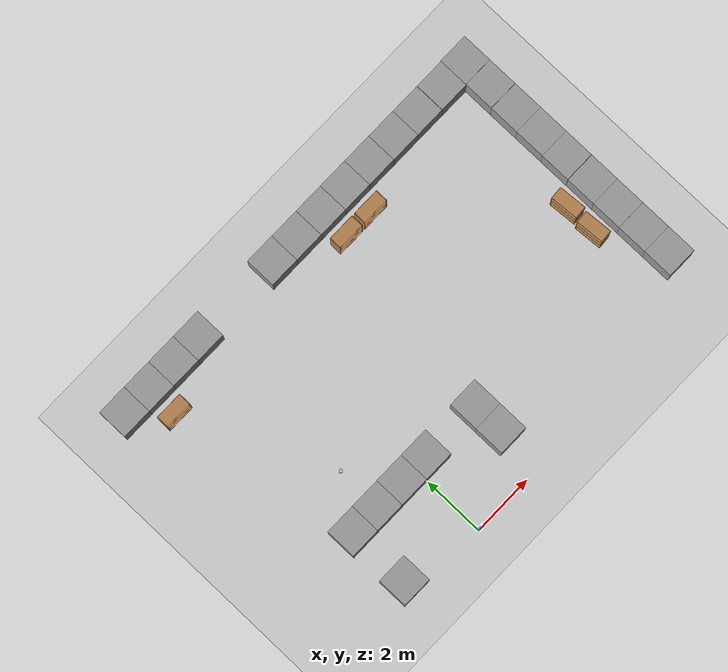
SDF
<sdf version="1.6">
 <world name="default">
  <model name="ground_plane">
   <static>1</static>
   <link name="link">
    <collision name="collision">
     <geometry><plane><normal>0 0 1</normal><size>100 100</size></plane></geometry>
     <surface><friction><ode><mu>100</mu><mu2>50</mu2></ode></friction></surface>
    </collision>
    <visual name="visual">
     <cast_shadows>0</cast_shadows>
     <geometry><plane><normal>0 0 1</normal><size>100 100</size></plane></geometry>
     <material>
      <script><uri>file://media/materials/scripts/gazebo.material</uri><name>Gazebo/Grey</name></script>
     </material>
    </visual>
   </link>
  </model>
  <model name="unit_box_1">
   <pose>9.47002 9.54111 0.499798 -0.000404 1e-06 -1.3e-05</pose>
   <link name="link">
    <inertial>
     <mass>1</mass>
     <inertia>
      <ixx>0.166667</ixx>
      <ixy>0</ixy>
      <ixz>0</ixz>
      <iyy>0.166667</iyy>
      <iyz>0</iyz>
      <izz>0.166667</izz>
     </inertia>
    </inertial>
    <collision name="collision"><geometry><box><size>1 1 1</size></box></geometry></collision>
    <visual name="visual">
     <geometry><box><size>1 1 1</size></box></geometry>
     <material>
      <script><name>Gazebo/Grey</name><uri>file://media/materials/scripts/gazebo.material</uri></script>
     </material>
    </visual>
   </link>
  </model>
  <model name="unit_box_12">
   <pose>9.46932 8.53619 0.499798 -0.000404 -0 -0.000725</pose>
   <link name="link">
    <inertial>
     <mass>1</mass>
     <inertia>
      <ixx>0.166667</ixx>
      <ixy>0</ixy>
      <ixz>0</ixz>
      <iyy>0.166667</iyy>
      <iyz>0</iyz>
      <izz>0.166667</izz>
     </inertia>
    </inertial>
    <collision name="collision"><geometry><box><size>1 1 1</size></box></geometry></collision>
    <visual name="visual">
     <geometry><box><size>1 1 1</size></box></geometry>
     <material>
      <script><name>Gazebo/Grey</name><uri>file://media/materials/scripts/gazebo.material</uri></script>
     </material>
    </visual>
   </link>
  </model>
  <model name="unit_box_13">
   <pose>9.46833 7.53135 0.499798 0.000404 -1e-06 0.0004</pose>
   <link name="link">
    <inertial>
     <mass>1</mass>
     <inertia>
      <ixx>0.166667</ixx>
      <ixy>0</ixy>
      <ixz>0</ixz>
      <iyy>0.166667</iyy>
      <iyz>0</iyz>
      <izz>0.166667</izz>
     </inertia>
    </inertial>
    <collision name="collision"><geometry><box><size>1 1 1</size></box></geometry></collision>
    <visual name="visual">
     <geometry><box><size>1 1 1</size></box></geometry>
     <material>
      <script><name>Gazebo/Grey</name><uri>file://media/materials/scripts/gazebo.material</uri></script>
     </material>
    </visual>
   </link>
  </model>
  <model name="unit_box_14">
   <pose>9.46847 6.53108 0.5 0 -0 0.000157</pose>
   <link name="link">
    <inertial>
     <mass>1</mass>
     <inertia>
      <ixx>0.166667</ixx>
      <ixy>0</ixy>
      <ixz>0</ixz>
      <iyy>0.166667</iyy>
      <iyz>0</iyz>
      <izz>0.166667</izz>
     </inertia>
    </inertial>
    <collision name="collision"><geometry><box><size>1 1 1</size></box></geometry></collision>
    <visual name="visual">
     <geometry><box><size>1 1 1</size></box></geometry>
     <material>
      <script><name>Gazebo/Grey</name><uri>file://media/materials/scripts/gazebo.material</uri></script>
     </material>
    </visual>
   </link>
  </model>
  <model name="unit_box_15">
   <pose>9.46869 5.53105 0.49907 0 0.0001 0.000155</pose>
   <link name="link">
    <inertial>
     <mass>1</mass>
     <inertia>
      <ixx>0.166667</ixx>
      <ixy>0</ixy>
      <ixz>0</ixz>
      <iyy>0.166667</iyy>
      <iyz>0</iyz>
      <izz>0.166667</izz>
     </inertia>
    </inertial>
    <collision name="collision"><geometry><box><size>1 1 1</size></box></geometry></collision>
    <visual name="visual">
     <geometry><box><size>1 1 1</size></box></geometry>
     <material>
      <script><name>Gazebo/Grey</name><uri>file://media/materials/scripts/gazebo.material</uri></script>
     </material>
    </visual>
   </link>
  </model>
  <model name="unit_box_16">
   <pose>9.46813 4.51848 0.499798 -0.000404 -1e-06 -9.1e-05</pose>
   <link name="link">
    <inertial>
     <mass>1</mass>
     <inertia>
      <ixx>0.166667</ixx>
      <ixy>0</ixy>
      <ixz>0</ixz>
      <iyy>0.166667</iyy>
      <iyz>0</iyz>
      <izz>0.166667</izz>
     </inertia>
    </inertial>
    <collision name="collision"><geometry><box><size>1 1 1</size></box></geometry></collision>
    <visual name="visual">
     <geometry><box><size>1 1 1</size></box></geometry>
     <material>
      <script><name>Gazebo/Grey</name><uri>file://media/materials/scripts/gazebo.material</uri></script>
     </material>
    </visual>
   </link>
  </model>
  <model name="unit_box_17">
   <pose>9.46838 3.51846 0.499798 -0.000404 -0 -9.3e-05</pose>
   <link name="link">
    <inertial>
     <mass>1</mass>
     <inertia>
      <ixx>0.166667</ixx>
      <ixy>0</ixy>
      <ixz>0</ixz>
      <iyy>0.166667</iyy>
      <iyz>0</iyz>
      <izz>0.166667</izz>
     </inertia>
    </inertial>
    <collision name="collision"><geometry><box><size>1 1 1</size></box></geometry></collision>
    <visual name="visual">
     <geometry><box><size>1 1 1</size></box></geometry>
     <material>
      <script><name>Gazebo/Grey</name><uri>file://media/materials/scripts/gazebo.material</uri></script>
     </material>
    </visual>
   </link>
  </model>
  <model name="unit_box_18">
   <pose>9.46805 2.51745 0.499798 -0.000404 -0 0.000151</pose>
   <link name="link">
    <inertial>
     <mass>1</mass>
     <inertia>
      <ixx>0.166667</ixx>
      <ixy>0</ixy>
      <ixz>0</ixz>
      <iyy>0.166667</iyy>
      <iyz>0</iyz>
      <izz>0.166667</izz>
     </inertia>
    </inertial>
    <collision name="collision"><geometry><box><size>1 1 1</size></box></geometry></collision>
    <visual name="visual">
     <geometry><box><size>1 1 1</size></box></geometry>
     <material>
      <script><name>Gazebo/Grey</name><uri>file://media/materials/scripts/gazebo.material</uri></script>
     </material>
    </visual>
   </link>
  </model>
  <model name="unit_box_19">
   <pose>9.46806 1.51743 0.499798 -0.000404 1e-06 0.000141</pose>
   <link name="link">
    <inertial>
     <mass>1</mass>
     <inertia>
      <ixx>0.166667</ixx>
      <ixy>0</ixy>
      <ixz>0</ixz>
      <iyy>0.166667</iyy>
      <iyz>0</iyz>
      <izz>0.166667</izz>
     </inertia>
    </inertial>
    <collision name="collision"><geometry><box><size>1 1 1</size></box></geometry></collision>
    <visual name="visual">
     <geometry><box><size>1 1 1</size></box></geometry>
     <material>
      <script><name>Gazebo/Grey</name><uri>file://media/materials/scripts/gazebo.material</uri></script>
     </material>
    </visual>
   </link>
  </model>
  <model name="unit_box_36_20">
   <pose>-4.55123 9.54812 0.499798 -0.000404 1e-06 0.000569</pose>
   <link name="link">
    <inertial>
     <mass>1</mass>
     <inertia>
      <ixx>0.166667</ixx>
      <ixy>0</ixy>
      <ixz>0</ixz>
      <iyy>0.166667</iyy>
      <iyz>0</iyz>
      <izz>0.166667</izz>
     </inertia>
    </inertial>
    <collision name="collision"><geometry><box><size>1 1 1</size></box></geometry></collision>
    <visual name="visual">
     <geometry><box><size>1 1 1</size></box></geometry>
     <material>
      <script><name>Gazebo/Grey</name><uri>file://media/materials/scripts/gazebo.material</uri></script>
     </material>
    </visual>
   </link>
  </model>
  <model name="unit_box_36_21">
   <pose>-3.55099 9.54726 0.499798 -0.000404 1e-06 0.000859</pose>
   <link name="link">
    <inertial>
     <mass>1</mass>
     <inertia>
      <ixx>0.166667</ixx>
      <ixy>0</ixy>
      <ixz>0</ixz>
      <iyy>0.166667</iyy>
      <iyz>0</iyz>
      <izz>0.166667</izz>
     </inertia>
    </inertial>
    <collision name="collision"><geometry><box><size>1 1 1</size></box></geometry></collision>
    <visual name="visual">
     <geometry><box><size>1 1 1</size></box></geometry>
     <material>
      <script><name>Gazebo/Grey</name><uri>file://media/materials/scripts/gazebo.material</uri></script>
     </material>
    </visual>
   </link>
  </model>
  <model name="unit_box_36_22">
   <pose>-2.55088 9.54724 0.499798 -0.000404 1e-06 0.000881</pose>
   <link name="link">
    <inertial>
     <mass>1</mass>
     <inertia>
      <ixx>0.166667</ixx>
      <ixy>0</ixy>
      <ixz>0</ixz>
      <iyy>0.166667</iyy>
      <iyz>0</iyz>
      <izz>0.166667</izz>
     </inertia>
    </inertial>
    <collision name="collision"><geometry><box><size>1 1 1</size></box></geometry></collision>
    <visual name="visual">
     <geometry><box><size>1 1 1</size></box></geometry>
     <material>
      <script><name>Gazebo/Grey</name><uri>file://media/materials/scripts/gazebo.material</uri></script>
     </material>
    </visual>
   </link>
  </model>
  <model name="unit_box_36_23">
   <pose>-1.5507 9.54787 0.499798 -0.000404 1e-06 0.000864</pose>
   <link name="link">
    <inertial>
     <mass>1</mass>
     <inertia>
      <ixx>0.166667</ixx>
      <ixy>0</ixy>
      <ixz>0</ixz>
      <iyy>0.166667</iyy>
      <iyz>0</iyz>
      <izz>0.166667</izz>
     </inertia>
    </inertial>
    <collision name="collision"><geometry><box><size>1 1 1</size></box></geometry></collision>
    <visual name="visual">
     <geometry><box><size>1 1 1</size></box></geometry>
     <material>
      <script><name>Gazebo/Grey</name><uri>file://media/materials/scripts/gazebo.material</uri></script>
     </material>
    </visual>
   </link>
  </model>
  <model name="unit_box_36_24">
   <pose>1.45701 9.52175 0.499798 -0.000404 1e-06 0.001614</pose>
   <link name="link">
    <inertial>
     <mass>1</mass>
     <inertia>
      <ixx>0.166667</ixx>
      <ixy>0</ixy>
      <ixz>0</ixz>
      <iyy>0.166667</iyy>
      <iyz>0</iyz>
      <izz>0.166667</izz>
     </inertia>
    </inertial>
    <collision name="collision"><geometry><box><size>1 1 1</size></box></geometry></collision>
    <visual name="visual">
     <geometry><box><size>1 1 1</size></box></geometry>
     <material>
      <script><name>Gazebo/Grey</name><uri>file://media/materials/scripts/gazebo.material</uri></script>
     </material>
    </visual>
   </link>
  </model>
  <model name="unit_box_36_25">
   <pose>2.45704 9.52041 0.499798 0.000404 0 0.001663</pose>
   <link name="link">
    <inertial>
     <mass>1</mass>
     <inertia>
      <ixx>0.166667</ixx>
      <ixy>0</ixy>
      <ixz>0</ixz>
      <iyy>0.166667</iyy>
      <iyz>0</iyz>
      <izz>0.166667</izz>
     </inertia>
    </inertial>
    <collision name="collision"><geometry><box><size>1 1 1</size></box></geometry></collision>
    <visual name="visual">
     <geometry><box><size>1 1 1</size></box></geometry>
     <material>
      <script><name>Gazebo/Grey</name><uri>file://media/materials/scripts/gazebo.material</uri></script>
     </material>
    </visual>
   </link>
  </model>
  <model name="unit_box_36_26">
   <pose>3.45804 9.52219 0.49912 0 -0 0.000831</pose>
   <link name="link">
    <inertial>
     <mass>1</mass>
     <inertia>
      <ixx>0.166667</ixx>
      <ixy>0</ixy>
      <ixz>0</ixz>
      <iyy>0.166667</iyy>
      <iyz>0</iyz>
      <izz>0.166667</izz>
     </inertia>
    </inertial>
    <collision name="collision"><geometry><box><size>1 1 1</size></box></geometry></collision>
    <visual name="visual">
     <geometry><box><size>1 1 1</size></box></geometry>
     <material>
      <script><name>Gazebo/Grey</name><uri>file://media/materials/scripts/gazebo.material</uri></script>
     </material>
    </visual>
   </link>
  </model>
  <model name="unit_box_36_27">
   <pose>4.45857 9.52209 0.499798 0.000404 -1e-06 0.000479</pose>
   <link name="link">
    <inertial>
     <mass>1</mass>
     <inertia>
      <ixx>0.166667</ixx>
      <ixy>0</ixy>
      <ixz>0</ixz>
      <iyy>0.166667</iyy>
      <iyz>0</iyz>
      <izz>0.166667</izz>
     </inertia>
    </inertial>
    <collision name="collision"><geometry><box><size>1 1 1</size></box></geometry></collision>
    <visual name="visual">
     <geometry><box><size>1 1 1</size></box></geometry>
     <material>
      <script><name>Gazebo/Grey</name><uri>file://media/materials/scripts/gazebo.material</uri></script>
     </material>
    </visual>
   </link>
  </model>
  <model name="unit_box_36_28">
   <pose>5.45884 9.52211 0.499802 -0.000397 1e-06 0.000238</pose>
   <link name="link">
    <inertial>
     <mass>1</mass>
     <inertia>
      <ixx>0.166667</ixx>
      <ixy>0</ixy>
      <ixz>0</ixz>
      <iyy>0.166667</iyy>
      <iyz>0</iyz>
      <izz>0.166667</izz>
     </inertia>
    </inertial>
    <collision name="collision"><geometry><box><size>1 1 1</size></box></geometry></collision>
    <visual name="visual">
     <geometry><box><size>1 1 1</size></box></geometry>
     <material>
      <script><name>Gazebo/Grey</name><uri>file://media/materials/scripts/gazebo.material</uri></script>
     </material>
    </visual>
   </link>
  </model>
  <model name="unit_box_36_29">
   <pose>6.4589 9.52077 0.49869 0.00066 1e-06 0.000347</pose>
   <link name="link">
    <inertial>
     <mass>1</mass>
     <inertia>
      <ixx>0.166667</ixx>
      <ixy>0</ixy>
      <ixz>0</ixz>
      <iyy>0.166667</iyy>
      <iyz>0</iyz>
      <izz>0.166667</izz>
     </inertia>
    </inertial>
    <collision name="collision"><geometry><box><size>1 1 1</size></box></geometry></collision>
    <visual name="visual">
     <geometry><box><size>1 1 1</size></box></geometry>
     <material>
      <script><name>Gazebo/Grey</name><uri>file://media/materials/scripts/gazebo.material</uri></script>
     </material>
    </visual>
   </link>
  </model>
  <model name="unit_box_36_30">
   <pose>7.45891 9.52052 0.499802 0.000397 -0 0.000361</pose>
   <link name="link">
    <inertial>
     <mass>1</mass>
     <inertia>
      <ixx>0.166667</ixx>
      <ixy>0</ixy>
      <ixz>0</ixz>
      <iyy>0.166667</iyy>
      <iyz>0</iyz>
      <izz>0.166667</izz>
     </inertia>
    </inertial>
    <collision name="collision"><geometry><box><size>1 1 1</size></box></geometry></collision>
    <visual name="visual">
     <geometry><box><size>1 1 1</size></box></geometry>
     <material>
      <script><name>Gazebo/Grey</name><uri>file://media/materials/scripts/gazebo.material</uri></script>
     </material>
    </visual>
   </link>
  </model>
  <model name="unit_box_36_31">
   <pose>8.46972 9.52085 0.499798 -0.000404 -0 -0.000427</pose>
   <link name="link">
    <inertial>
     <mass>1</mass>
     <inertia>
      <ixx>0.166667</ixx>
      <ixy>0</ixy>
      <ixz>0</ixz>
      <iyy>0.166667</iyy>
      <iyz>0</iyz>
      <izz>0.166667</izz>
     </inertia>
    </inertial>
    <collision name="collision"><geometry><box><size>1 1 1</size></box></geometry></collision>
    <visual name="visual">
     <geometry><box><size>1 1 1</size></box></geometry>
     <material>
      <script><name>Gazebo/Grey</name><uri>file://media/materials/scripts/gazebo.material</uri></script>
     </material>
    </visual>
   </link>
  </model>
  <model name="unit_box_39">
   <pose>-2.52996 2.53016 0.5 0 -0 0.000575</pose>
   <link name="link">
    <inertial>
     <mass>1</mass>
     <inertia>
      <ixx>0.166667</ixx>
      <ixy>0</ixy>
      <ixz>0</ixz>
      <iyy>0.166667</iyy>
      <iyz>0</iyz>
      <izz>0.166667</izz>
     </inertia>
    </inertial>
    <collision name="collision"><geometry><box><size>1 1 1</size></box></geometry></collision>
    <visual name="visual">
     <geometry><box><size>1 1 1</size></box></geometry>
     <material>
      <script><name>Gazebo/Grey</name><uri>file://media/materials/scripts/gazebo.material</uri></script>
     </material>
    </visual>
   </link>
  </model>
  <model name="unit_box_40">
   <pose>-2.52545 0.5256 0.49912 0 0 -3e-06</pose>
   <link name="link">
    <inertial>
     <mass>1</mass>
     <inertia>
      <ixx>0.166667</ixx>
      <ixy>0</ixy>
      <ixz>0</ixz>
      <iyy>0.166667</iyy>
      <iyz>0</iyz>
      <izz>0.166667</izz>
     </inertia>
    </inertial>
    <collision name="collision"><geometry><box><size>1 1 1</size></box></geometry></collision>
    <visual name="visual">
     <geometry><box><size>1 1 1</size></box></geometry>
     <material>
      <script><name>Gazebo/Grey</name><uri>file://media/materials/scripts/gazebo.material</uri></script>
     </material>
    </visual>
   </link>
  </model>
  <model name="unit_box_47">
   <pose>2.46741 1.50654 0.499798 0.000404 -0 0.002762</pose>
   <link name="link">
    <inertial>
     <mass>1</mass>
     <inertia>
      <ixx>0.166667</ixx>
      <ixy>0</ixy>
      <ixz>0</ixz>
      <iyy>0.166667</iyy>
      <iyz>0</iyz>
      <izz>0.166667</izz>
     </inertia>
    </inertial>
    <collision name="collision"><geometry><box><size>1 1 1</size></box></geometry></collision>
    <visual name="visual">
     <geometry><box><size>1 1 1</size></box></geometry>
     <material>
      <script><name>Gazebo/Grey</name><uri>file://media/materials/scripts/gazebo.material</uri></script>
     </material>
    </visual>
   </link>
  </model>
  <model name="unit_box_48">
   <pose>2.46736 2.50665 0.499798 0.000404 -0 0.002724</pose>
   <link name="link">
    <inertial>
     <mass>1</mass>
     <inertia>
      <ixx>0.166667</ixx>
      <ixy>0</ixy>
      <ixz>0</ixz>
      <iyy>0.166667</iyy>
      <iyz>0</iyz>
      <izz>0.166667</izz>
     </inertia>
    </inertial>
    <collision name="collision"><geometry><box><size>1 1 1</size></box></geometry></collision>
    <visual name="visual">
     <geometry><box><size>1 1 1</size></box></geometry>
     <material>
      <script><name>Gazebo/Grey</name><uri>file://media/materials/scripts/gazebo.material</uri></script>
     </material>
    </visual>
   </link>
  </model>
  <model name="unit_box_49">
   <pose>-1.52955 2.52997 0.4952 0 -0 0.000321</pose>
   <link name="link">
    <inertial>
     <mass>1</mass>
     <inertia>
      <ixx>0.166667</ixx>
      <ixy>0</ixy>
      <ixz>0</ixz>
      <iyy>0.166667</iyy>
      <iyz>0</iyz>
      <izz>0.166667</izz>
     </inertia>
    </inertial>
    <collision name="collision"><geometry><box><size>1 1 1</size></box></geometry></collision>
    <visual name="visual">
     <geometry><box><size>1 1 1</size></box></geometry>
     <material>
      <script><name>Gazebo/Grey</name><uri>file://media/materials/scripts/gazebo.material</uri></script>
     </material>
    </visual>
   </link>
  </model>
  <model name="unit_box_50">
   <pose>-0.529386 2.53003 0.499798 -0.000404 1e-06 0.000123</pose>
   <link name="link">
    <inertial>
     <mass>1</mass>
     <inertia>
      <ixx>0.166667</ixx>
      <ixy>0</ixy>
      <ixz>0</ixz>
      <iyy>0.166667</iyy>
      <iyz>0</iyz>
      <izz>0.166667</izz>
     </inertia>
    </inertial>
    <collision name="collision"><geometry><box><size>1 1 1</size></box></geometry></collision>
    <visual name="visual">
     <geometry><box><size>1 1 1</size></box></geometry>
     <material>
      <script><name>Gazebo/Grey</name><uri>file://media/materials/scripts/gazebo.material</uri></script>
     </material>
    </visual>
   </link>
  </model>
  <model name="unit_box_51">
   <pose>0.470761 2.53048 0.499798 -0.000404 1e-06 0.000161</pose>
   <link name="link">
    <inertial>
     <mass>1</mass>
     <inertia>
      <ixx>0.166667</ixx>
      <ixy>0</ixy>
      <ixz>0</ixz>
      <iyy>0.166667</iyy>
      <iyz>0</iyz>
      <izz>0.166667</izz>
     </inertia>
    </inertial>
    <collision name="collision"><geometry><box><size>1 1 1</size></box></geometry></collision>
    <visual name="visual">
     <geometry><box><size>1 1 1</size></box></geometry>
     <material>
      <script><name>Gazebo/Grey</name><uri>file://media/materials/scripts/gazebo.material</uri></script>
     </material>
    </visual>
   </link>
  </model>
  <model name="bookshelf_4">
   <static>1</static>
   <link name="link">
    <inertial><mass>1</mass></inertial>
    <collision name="back">
     <pose>0 0.005 0.6 0 -0 0</pose>
     <geometry><box><size>0.9 0.01 1.2</size></box></geometry>
    </collision>
    <visual name="visual1">
     <pose>0 0.005 0.6 0 -0 0</pose>
     <geometry><box><size>0.9 0.01 1.2</size></box></geometry>
     <material>
      <script><uri>file://media/materials/scripts/gazebo.material</uri><name>Gazebo/Wood</name></script>
     </material>
    </visual>
    <collision name="left_side">
     <pose>0.45 -0.195 0.6 0 -0 0</pose>
     <geometry><box><size>0.02 0.4 1.2</size></box></geometry>
    </collision>
    <visual name="visual2">
     <pose>0.45 -0.195 0.6 0 -0 0</pose>
     <geometry><box><size>0.02 0.4 1.2</size></box></geometry>
     <material>
      <script><uri>file://media/materials/scripts/gazebo.material</uri><name>Gazebo/Wood</name></script>
     </material>
    </visual>
    <collision name="right_side">
     <pose>-0.45 -0.195 0.6 0 -0 0</pose>
     <geometry><box><size>0.02 0.4 1.2</size></box></geometry>
    </collision>
    <visual name="visual3">
     <pose>-0.45 -0.195 0.6 0 -0 0</pose>
     <geometry><box><size>0.02 0.4 1.2</size></box></geometry>
     <material>
      <script><uri>file://media/materials/scripts/gazebo.material</uri><name>Gazebo/Wood</name></script>
     </material>
    </visual>
    <collision name="bottom">
     <pose>0 -0.195 0.03 0 -0 0</pose>
     <geometry><box><size>0.88 0.4 0.06</size></box></geometry>
    </collision>
    <visual name="visual4">
     <pose>0 -0.195 0.03 0 -0 0</pose>
     <geometry><box><size>0.88 0.4 0.06</size></box></geometry>
     <material>
      <script><uri>file://media/materials/scripts/gazebo.material</uri><name>Gazebo/Wood</name></script>
     </material>
    </visual>
    <collision name="top">
     <pose>0 -0.195 1.19 0 -0 0</pose>
     <geometry><box><size>0.88 0.4 0.02</size></box></geometry>
    </collision>
    <visual name="visual5">
     <pose>0 -0.195 1.19 0 -0 0</pose>
     <geometry><box><size>0.88 0.4 0.02</size></box></geometry>
     <material>
      <script><uri>file://media/materials/scripts/gazebo.material</uri><name>Gazebo/Wood</name></script>
     </material>
    </visual>
    <collision name="low_shelf">
     <pose>0 -0.195 0.43 0 -0 0</pose>
     <geometry><box><size>0.88 0.4 0.02</size></box></geometry>
    </collision>
    <visual name="visual6">
     <pose>0 -0.195 0.43 0 -0 0</pose>
     <geometry><box><size>0.88 0.4 0.02</size></box></geometry>
     <material>
      <script><uri>file://media/materials/scripts/gazebo.material</uri><name>Gazebo/Wood</name></script>
     </material>
    </visual>
    <collision name="high_shelf">
     <pose>0 -0.195 0.8 0 -0 0</pose>
     <geometry><box><size>0.88 0.4 0.02</size></box></geometry>
    </collision>
    <visual name="visual7">
     <pose>0 -0.195 0.8 0 -0 0</pose>
     <geometry><box><size>0.88 0.4 0.02</size></box></geometry>
     <material>
      <script><uri>file://media/materials/scripts/gazebo.material</uri><name>Gazebo/Wood</name></script>
     </material>
    </visual>
   </link>
   <pose>-3.56677 8.73709 0 0 -0 0</pose>
  </model>
  <model name="bookshelf_6">
   <static>1</static>
   <link name="link">
    <inertial><mass>1</mass></inertial>
    <collision name="back">
     <pose>0 0.005 0.6 0 -0 0</pose>
     <geometry><box><size>0.9 0.01 1.2</size></box></geometry>
    </collision>
    <visual name="visual1">
     <pose>0 0.005 0.6 0 -0 0</pose>
     <geometry><box><size>0.9 0.01 1.2</size></box></geometry>
     <material>
      <script><uri>file://media/materials/scripts/gazebo.material</uri><name>Gazebo/Wood</name></script>
     </material>
    </visual>
    <collision name="left_side">
     <pose>0.45 -0.195 0.6 0 -0 0</pose>
     <geometry><box><size>0.02 0.4 1.2</size></box></geometry>
    </collision>
    <visual name="visual2">
     <pose>0.45 -0.195 0.6 0 -0 0</pose>
     <geometry><box><size>0.02 0.4 1.2</size></box></geometry>
     <material>
      <script><uri>file://media/materials/scripts/gazebo.material</uri><name>Gazebo/Wood</name></script>
     </material>
    </visual>
    <collision name="right_side">
     <pose>-0.45 -0.195 0.6 0 -0 0</pose>
     <geometry><box><size>0.02 0.4 1.2</size></box></geometry>
    </collision>
    <visual name="visual3">
     <pose>-0.45 -0.195 0.6 0 -0 0</pose>
     <geometry><box><size>0.02 0.4 1.2</size></box></geometry>
     <material>
      <script><uri>file://media/materials/scripts/gazebo.material</uri><name>Gazebo/Wood</name></script>
     </material>
    </visual>
    <collision name="bottom">
     <pose>0 -0.195 0.03 0 -0 0</pose>
     <geometry><box><size>0.88 0.4 0.06</size></box></geometry>
    </collision>
    <visual name="visual4">
     <pose>0 -0.195 0.03 0 -0 0</pose>
     <geometry><box><size>0.88 0.4 0.06</size></box></geometry>
     <material>
      <script><uri>file://media/materials/scripts/gazebo.material</uri><name>Gazebo/Wood</name></script>
     </material>
    </visual>
    <collision name="top">
     <pose>0 -0.195 1.19 0 -0 0</pose>
     <geometry><box><size>0.88 0.4 0.02</size></box></geometry>
    </collision>
    <visual name="visual5">
     <pose>0 -0.195 1.19 0 -0 0</pose>
     <geometry><box><size>0.88 0.4 0.02</size></box></geometry>
     <material>
      <script><uri>file://media/materials/scripts/gazebo.material</uri><name>Gazebo/Wood</name></script>
     </material>
    </visual>
    <collision name="low_shelf">
     <pose>0 -0.195 0.43 0 -0 0</pose>
     <geometry><box><size>0.88 0.4 0.02</size></box></geometry>
    </collision>
    <visual name="visual6">
     <pose>0 -0.195 0.43 0 -0 0</pose>
     <geometry><box><size>0.88 0.4 0.02</size></box></geometry>
     <material>
      <script><uri>file://media/materials/scripts/gazebo.material</uri><name>Gazebo/Wood</name></script>
     </material>
    </visual>
    <collision name="high_shelf">
     <pose>0 -0.195 0.8 0 -0 0</pose>
     <geometry><box><size>0.88 0.4 0.02</size></box></geometry>
    </collision>
    <visual name="visual7">
     <pose>0 -0.195 0.8 0 -0 0</pose>
     <geometry><box><size>0.88 0.4 0.02</size></box></geometry>
     <material>
      <script><uri>file://media/materials/scripts/gazebo.material</uri><name>Gazebo/Wood</name></script>
     </material>
    </visual>
   </link>
   <pose>3.48869 8.73709 0 0 -0 0</pose>
  </model>
  <model name="bookshelf_7">
   <static>1</static>
   <link name="link">
    <inertial><mass>1</mass></inertial>
    <collision name="back">
     <pose>0 0.005 0.6 0 -0 0</pose>
     <geometry><box><size>0.9 0.01 1.2</size></box></geometry>
    </collision>
    <visual name="visual1">
     <pose>0 0.005 0.6 0 -0 0</pose>
     <geometry><box><size>0.9 0.01 1.2</size></box></geometry>
     <material>
      <script><uri>file://media/materials/scripts/gazebo.material</uri><name>Gazebo/Wood</name></script>
     </material>
    </visual>
    <collision name="left_side">
     <pose>0.45 -0.195 0.6 0 -0 0</pose>
     <geometry><box><size>0.02 0.4 1.2</size></box></geometry>
    </collision>
    <visual name="visual2">
     <pose>0.45 -0.195 0.6 0 -0 0</pose>
     <geometry><box><size>0.02 0.4 1.2</size></box></geometry>
     <material>
      <script><uri>file://media/materials/scripts/gazebo.material</uri><name>Gazebo/Wood</name></script>
     </material>
    </visual>
    <collision name="right_side">
     <pose>-0.45 -0.195 0.6 0 -0 0</pose>
     <geometry><box><size>0.02 0.4 1.2</size></box></geometry>
    </collision>
    <visual name="visual3">
     <pose>-0.45 -0.195 0.6 0 -0 0</pose>
     <geometry><box><size>0.02 0.4 1.2</size></box></geometry>
     <material>
      <script><uri>file://media/materials/scripts/gazebo.material</uri><name>Gazebo/Wood</name></script>
     </material>
    </visual>
    <collision name="bottom">
     <pose>0 -0.195 0.03 0 -0 0</pose>
     <geometry><box><size>0.88 0.4 0.06</size></box></geometry>
    </collision>
    <visual name="visual4">
     <pose>0 -0.195 0.03 0 -0 0</pose>
     <geometry><box><size>0.88 0.4 0.06</size></box></geometry>
     <material>
      <script><uri>file://media/materials/scripts/gazebo.material</uri><name>Gazebo/Wood</name></script>
     </material>
    </visual>
    <collision name="top">
     <pose>0 -0.195 1.19 0 -0 0</pose>
     <geometry><box><size>0.88 0.4 0.02</size></box></geometry>
    </collision>
    <visual name="visual5">
     <pose>0 -0.195 1.19 0 -0 0</pose>
     <geometry><box><size>0.88 0.4 0.02</size></box></geometry>
     <material>
      <script><uri>file://media/materials/scripts/gazebo.material</uri><name>Gazebo/Wood</name></script>
     </material>
    </visual>
    <collision name="low_shelf">
     <pose>0 -0.195 0.43 0 -0 0</pose>
     <geometry><box><size>0.88 0.4 0.02</size></box></geometry>
    </collision>
    <visual name="visual6">
     <pose>0 -0.195 0.43 0 -0 0</pose>
     <geometry><box><size>0.88 0.4 0.02</size></box></geometry>
     <material>
      <script><uri>file://media/materials/scripts/gazebo.material</uri><name>Gazebo/Wood</name></script>
     </material>
    </visual>
    <collision name="high_shelf">
     <pose>0 -0.195 0.8 0 -0 0</pose>
     <geometry><box><size>0.88 0.4 0.02</size></box></geometry>
    </collision>
    <visual name="visual7">
     <pose>0 -0.195 0.8 0 -0 0</pose>
     <geometry><box><size>0.88 0.4 0.02</size></box></geometry>
     <material>
      <script><uri>file://media/materials/scripts/gazebo.material</uri><name>Gazebo/Wood</name></script>
     </material>
    </visual>
   </link>
   <pose>4.48995 8.73709 0 0 -0 0</pose>
  </model>
  <model name="beer_1">
   <link name="link">
    <pose>0 0 0.115 0 -0 0</pose>
    <inertial>
     <mass>0.39</mass>
     <inertia><ixx>0.00058</ixx><ixy>0</ixy><ixz>0</ixz><iyy>0.00058</iyy><iyz>0</iyz><izz>0.00019</izz></inertia>
    </inertial>
    <collision name="collision">
     <geometry><cylinder><radius>0.055</radius><length>0.23</length></cylinder></geometry>
    </collision>
    <visual name="visual">
     <geometry><cylinder><radius>0.055</radius><length>0.23</length></cylinder></geometry>
     <material>
      <script>
       <uri>model://beer/materials/scripts</uri>
       <uri>model://beer/materials/textures</uri>
       <name>Beer/Diffuse</name>
      </script>
     </material>
    </visual>
   </link>
   <pose>-1.52767 3.95702 0.774143 -0.000366 0.000172 -1.66595</pose>
  </model>
  <model name="bookshelf_1_clone_0">
   <static>1</static>
   <link name="link">
    <inertial><mass>1</mass></inertial>
    <collision name="back">
     <pose>0 0.005 0.6 0 -0 0</pose>
     <geometry><box><size>0.9 0.01 1.2</size></box></geometry>
    </collision>
    <visual name="visual1">
     <pose>0 0.005 0.6 0 -0 0</pose>
     <geometry><box><size>0.9 0.01 1.2</size></box></geometry>
     <material>
      <script><uri>file://media/materials/scripts/gazebo.material</uri><name>Gazebo/Wood</name></script>
     </material>
    </visual>
    <collision name="left_side">
     <pose>0.45 -0.195 0.6 0 -0 0</pose>
     <geometry><box><size>0.02 0.4 1.2</size></box></geometry>
    </collision>
    <visual name="visual2">
     <pose>0.45 -0.195 0.6 0 -0 0</pose>
     <geometry><box><size>0.02 0.4 1.2</size></box></geometry>
     <material>
      <script><uri>file://media/materials/scripts/gazebo.material</uri><name>Gazebo/Wood</name></script>
     </material>
    </visual>
    <collision name="right_side">
     <pose>-0.45 -0.195 0.6 0 -0 0</pose>
     <geometry><box><size>0.02 0.4 1.2</size></box></geometry>
    </collision>
    <visual name="visual3">
     <pose>-0.45 -0.195 0.6 0 -0 0</pose>
     <geometry><box><size>0.02 0.4 1.2</size></box></geometry>
     <material>
      <script><uri>file://media/materials/scripts/gazebo.material</uri><name>Gazebo/Wood</name></script>
     </material>
    </visual>
    <collision name="bottom">
     <pose>0 -0.195 0.03 0 -0 0</pose>
     <geometry><box><size>0.88 0.4 0.06</size></box></geometry>
    </collision>
    <visual name="visual4">
     <pose>0 -0.195 0.03 0 -0 0</pose>
     <geometry><box><size>0.88 0.4 0.06</size></box></geometry>
     <material>
      <script><uri>file://media/materials/scripts/gazebo.material</uri><name>Gazebo/Wood</name></script>
     </material>
    </visual>
    <collision name="top">
     <pose>0 -0.195 1.19 0 -0 0</pose>
     <geometry><box><size>0.88 0.4 0.02</size></box></geometry>
    </collision>
    <visual name="visual5">
     <pose>0 -0.195 1.19 0 -0 0</pose>
     <geometry><box><size>0.88 0.4 0.02</size></box></geometry>
     <material>
      <script><uri>file://media/materials/scripts/gazebo.material</uri><name>Gazebo/Wood</name></script>
     </material>
    </visual>
    <collision name="low_shelf">
     <pose>0 -0.195 0.43 0 -0 0</pose>
     <geometry><box><size>0.88 0.4 0.02</size></box></geometry>
    </collision>
    <visual name="visual6">
     <pose>0 -0.195 0.43 0 -0 0</pose>
     <geometry><box><size>0.88 0.4 0.02</size></box></geometry>
     <material>
      <script><uri>file://media/materials/scripts/gazebo.material</uri><name>Gazebo/Wood</name></script>
     </material>
    </visual>
    <collision name="high_shelf">
     <pose>0 -0.195 0.8 0 -0 0</pose>
     <geometry><box><size>0.88 0.4 0.02</size></box></geometry>
    </collision>
    <visual name="visual7">
     <pose>0 -0.195 0.8 0 -0 0</pose>
     <geometry><box><size>0.88 0.4 0.02</size></box></geometry>
     <material>
      <script><uri>file://media/materials/scripts/gazebo.material</uri><name>Gazebo/Wood</name></script>
     </material>
    </visual>
   </link>
   <pose>8.66173 3.55533 0 0 0 -1.5</pose>
  </model>
  <model name="bookshelf_1_clone_1">
   <static>1</static>
   <link name="link">
    <inertial><mass>1</mass></inertial>
    <collision name="back">
     <pose>0 0.005 0.6 0 -0 0</pose>
     <geometry><box><size>0.9 0.01 1.2</size></box></geometry>
    </collision>
    <visual name="visual1">
     <pose>0 0.005 0.6 0 -0 0</pose>
     <geometry><box><size>0.9 0.01 1.2</size></box></geometry>
     <material>
      <script><uri>file://media/materials/scripts/gazebo.material</uri><name>Gazebo/Wood</name></script>
     </material>
    </visual>
    <collision name="left_side">
     <pose>0.45 -0.195 0.6 0 -0 0</pose>
     <geometry><box><size>0.02 0.4 1.2</size></box></geometry>
    </collision>
    <visual name="visual2">
     <pose>0.45 -0.195 0.6 0 -0 0</pose>
     <geometry><box><size>0.02 0.4 1.2</size></box></geometry>
     <material>
      <script><uri>file://media/materials/scripts/gazebo.material</uri><name>Gazebo/Wood</name></script>
     </material>
    </visual>
    <collision name="right_side">
     <pose>-0.45 -0.195 0.6 0 -0 0</pose>
     <geometry><box><size>0.02 0.4 1.2</size></box></geometry>
    </collision>
    <visual name="visual3">
     <pose>-0.45 -0.195 0.6 0 -0 0</pose>
     <geometry><box><size>0.02 0.4 1.2</size></box></geometry>
     <material>
      <script><uri>file://media/materials/scripts/gazebo.material</uri><name>Gazebo/Wood</name></script>
     </material>
    </visual>
    <collision name="bottom">
     <pose>0 -0.195 0.03 0 -0 0</pose>
     <geometry><box><size>0.88 0.4 0.06</size></box></geometry>
    </collision>
    <visual name="visual4">
     <pose>0 -0.195 0.03 0 -0 0</pose>
     <geometry><box><size>0.88 0.4 0.06</size></box></geometry>
     <material>
      <script><uri>file://media/materials/scripts/gazebo.material</uri><name>Gazebo/Wood</name></script>
     </material>
    </visual>
    <collision name="top">
     <pose>0 -0.195 1.19 0 -0 0</pose>
     <geometry><box><size>0.88 0.4 0.02</size></box></geometry>
    </collision>
    <visual name="visual5">
     <pose>0 -0.195 1.19 0 -0 0</pose>
     <geometry><box><size>0.88 0.4 0.02</size></box></geometry>
     <material>
      <script><uri>file://media/materials/scripts/gazebo.material</uri><name>Gazebo/Wood</name></script>
     </material>
    </visual>
    <collision name="low_shelf">
     <pose>0 -0.195 0.43 0 -0 0</pose>
     <geometry><box><size>0.88 0.4 0.02</size></box></geometry>
    </collision>
    <visual name="visual6">
     <pose>0 -0.195 0.43 0 -0 0</pose>
     <geometry><box><size>0.88 0.4 0.02</size></box></geometry>
     <material>
      <script><uri>file://media/materials/scripts/gazebo.material</uri><name>Gazebo/Wood</name></script>
     </material>
    </visual>
    <collision name="high_shelf">
     <pose>0 -0.195 0.8 0 -0 0</pose>
     <geometry><box><size>0.88 0.4 0.02</size></box></geometry>
    </collision>
    <visual name="visual7">
     <pose>0 -0.195 0.8 0 -0 0</pose>
     <geometry><box><size>0.88 0.4 0.02</size></box></geometry>
     <material>
      <script><uri>file://media/materials/scripts/gazebo.material</uri><name>Gazebo/Wood</name></script>
     </material>
    </visual>
   </link>
   <pose>8.66173 4.5556 0 0 0 -1.5</pose>
  </model>
 </world>
</sdf>
